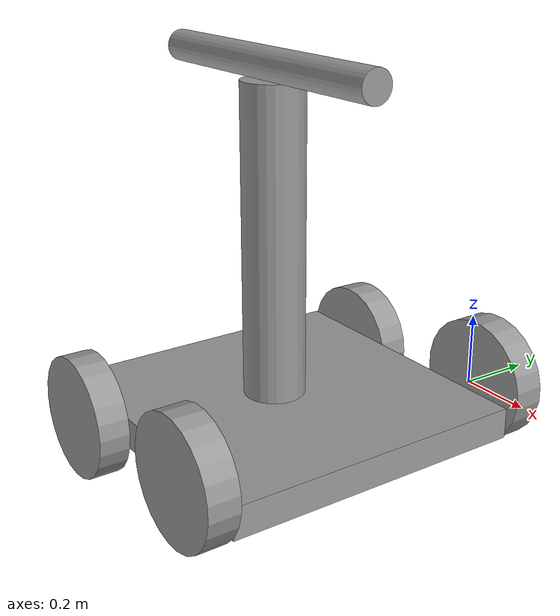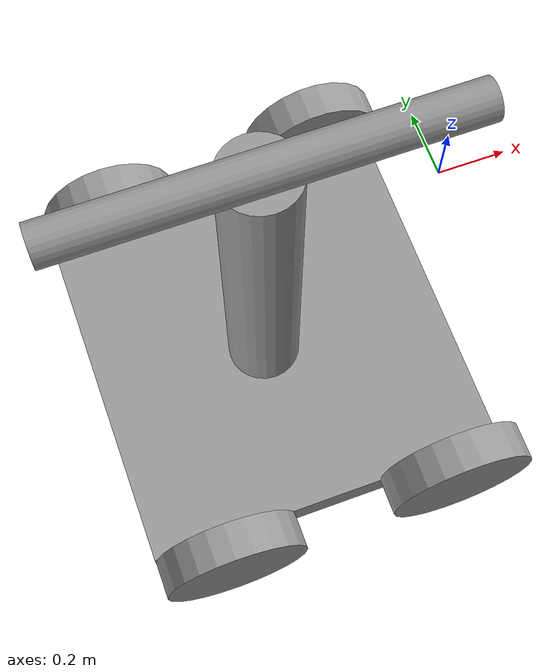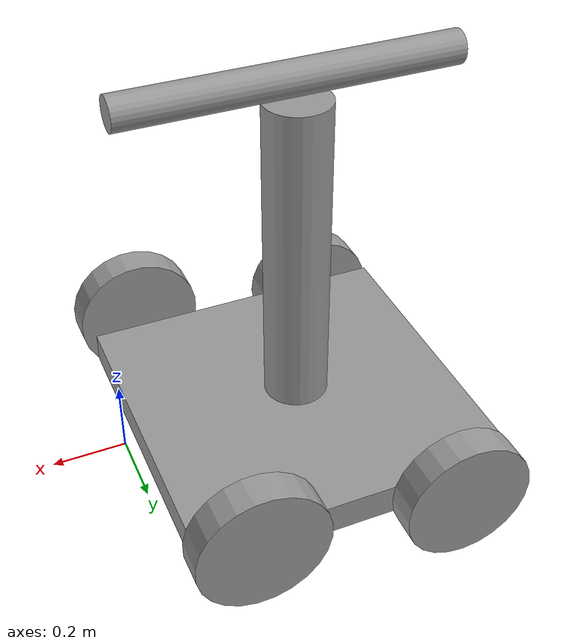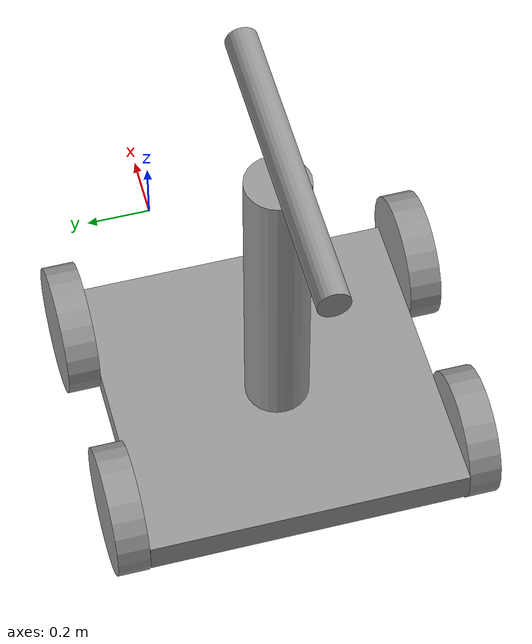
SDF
<?xml version='1.0'?>
<sdf version='1.6'>
  <model name='model_bot_2'>
    <link name='link_0_clone'>
      <pose frame=''>-0.897584 0.319677 -0.255 1.5707 -0 0</pose>
      <inertial>
        <mass>1</mass>
        <inertia>
          <ixx>0.145833</ixx>
          <ixy>0</ixy>
          <ixz>0</ixz>
          <iyy>0.145833</iyy>
          <iyz>0</iyz>
          <izz>0.125</izz>
        </inertia>
        <pose frame=''>0 0 0 0 -0 0</pose>
      </inertial>
      <self_collide>0</self_collide>
      <kinematic>0</kinematic>
      <visual name='visual'>
        <pose frame=''>0 0 0 0 -0 0</pose>
        <geometry>
          <cylinder>
            <radius>0.2</radius>
            <length>0.1</length>
          </cylinder>
        </geometry>
        <material>
          <lighting>1</lighting>
          <script>
            <uri>file://media/materials/scripts/gazebo.material</uri>
            <name>Gazebo/Grey</name>
          </script>
          <shader type='pixel'>
            <normal_map>__default__</normal_map>
          </shader>
          <ambient>0.3 0.3 0.3 1</ambient>
          <diffuse>0.7 0.7 0.7 1</diffuse>
          <specular>0.01 0.01 0.01 1</specular>
          <emissive>0 0 0 1</emissive>
        </material>
        <transparency>0</transparency>
        <cast_shadows>1</cast_shadows>
      </visual>
      <collision name='collision'>
        <laser_retro>0</laser_retro>
        <max_contacts>10</max_contacts>
        <pose frame=''>0 0 0 0 -0 0</pose>
        <geometry>
          <cylinder>
            <radius>0.2</radius>
            <length>0.1</length>
          </cylinder>
        </geometry>
        <surface>
          <friction>
            <ode>
              <mu>1</mu>
              <mu2>1</mu2>
              <fdir1>0 0 0</fdir1>
              <slip1>0</slip1>
              <slip2>0</slip2>
            </ode>
            <torsional>
              <coefficient>1</coefficient>
              <patch_radius>0</patch_radius>
              <surface_radius>0</surface_radius>
              <use_patch_radius>1</use_patch_radius>
              <ode>
                <slip>0</slip>
              </ode>
            </torsional>
          </friction>
          <bounce>
            <restitution_coefficient>0</restitution_coefficient>
            <threshold>1e+06</threshold>
          </bounce>
          <contact>
            <collide_without_contact>0</collide_without_contact>
            <collide_without_contact_bitmask>1</collide_without_contact_bitmask>
            <collide_bitmask>1</collide_bitmask>
            <ode>
              <soft_cfm>0</soft_cfm>
              <soft_erp>0.2</soft_erp>
              <kp>1e+13</kp>
              <kd>1</kd>
              <max_vel>0.01</max_vel>
              <min_depth>0</min_depth>
            </ode>
            <bullet>
              <split_impulse>1</split_impulse>
              <split_impulse_penetration_threshold>-0.01</split_impulse_penetration_threshold>
              <soft_cfm>0</soft_cfm>
              <soft_erp>0.2</soft_erp>
              <kp>1e+13</kp>
              <kd>1</kd>
            </bullet>
          </contact>
        </surface>
      </collision>
    </link>
    <link name='link_0_clone_0'>
      <pose frame=''>-0.897584 -0.780362 -0.255 1.5707 -0 0</pose>
      <inertial>
        <mass>1</mass>
        <inertia>
          <ixx>0.145833</ixx>
          <ixy>0</ixy>
          <ixz>0</ixz>
          <iyy>0.145833</iyy>
          <iyz>0</iyz>
          <izz>0.125</izz>
        </inertia>
        <pose frame=''>0 0 0 0 -0 0</pose>
      </inertial>
      <self_collide>0</self_collide>
      <kinematic>0</kinematic>
      <visual name='visual'>
        <pose frame=''>0 0 0 0 -0 0</pose>
        <geometry>
          <cylinder>
            <radius>0.2</radius>
            <length>0.1</length>
          </cylinder>
        </geometry>
        <material>
          <lighting>1</lighting>
          <script>
            <uri>file://media/materials/scripts/gazebo.material</uri>
            <name>Gazebo/Grey</name>
          </script>
          <shader type='pixel'>
            <normal_map>__default__</normal_map>
          </shader>
          <ambient>0.3 0.3 0.3 1</ambient>
          <diffuse>0.7 0.7 0.7 1</diffuse>
          <specular>0.01 0.01 0.01 1</specular>
          <emissive>0 0 0 1</emissive>
        </material>
        <transparency>0</transparency>
        <cast_shadows>1</cast_shadows>
      </visual>
      <collision name='collision'>
        <laser_retro>0</laser_retro>
        <max_contacts>10</max_contacts>
        <pose frame=''>0 0 0 0 -0 0</pose>
        <geometry>
          <cylinder>
            <radius>0.2</radius>
            <length>0.1</length>
          </cylinder>
        </geometry>
        <surface>
          <friction>
            <ode>
              <mu>1</mu>
              <mu2>1</mu2>
              <fdir1>0 0 0</fdir1>
              <slip1>0</slip1>
              <slip2>0</slip2>
            </ode>
            <torsional>
              <coefficient>1</coefficient>
              <patch_radius>0</patch_radius>
              <surface_radius>0</surface_radius>
              <use_patch_radius>1</use_patch_radius>
              <ode>
                <slip>0</slip>
              </ode>
            </torsional>
          </friction>
          <bounce>
            <restitution_coefficient>0</restitution_coefficient>
            <threshold>1e+06</threshold>
          </bounce>
          <contact>
            <collide_without_contact>0</collide_without_contact>
            <collide_without_contact_bitmask>1</collide_without_contact_bitmask>
            <collide_bitmask>1</collide_bitmask>
            <ode>
              <soft_cfm>0</soft_cfm>
              <soft_erp>0.2</soft_erp>
              <kp>1e+13</kp>
              <kd>1</kd>
              <max_vel>0.01</max_vel>
              <min_depth>0</min_depth>
            </ode>
            <bullet>
              <split_impulse>1</split_impulse>
              <split_impulse_penetration_threshold>-0.01</split_impulse_penetration_threshold>
              <soft_cfm>0</soft_cfm>
              <soft_erp>0.2</soft_erp>
              <kp>1e+13</kp>
              <kd>1</kd>
            </bullet>
          </contact>
        </surface>
      </collision>
    </link>
    <link name='link_0_clone_clone'>
      <pose frame=''>-0.258296 0.323495 -0.169372 1.57268 0.390812 0.005184</pose>
      <inertial>
        <mass>1</mass>
        <inertia>
          <ixx>0.145833</ixx>
          <ixy>0</ixy>
          <ixz>0</ixz>
          <iyy>0.145833</iyy>
          <iyz>0</iyz>
          <izz>0.125</izz>
        </inertia>
        <pose frame=''>0 0 0 0 -0 0</pose>
      </inertial>
      <self_collide>0</self_collide>
      <kinematic>0</kinematic>
      <visual name='visual'>
        <pose frame=''>0 0 0 0 -0 0</pose>
        <geometry>
          <cylinder>
            <radius>0.2</radius>
            <length>0.1</length>
          </cylinder>
        </geometry>
        <material>
          <lighting>1</lighting>
          <script>
            <uri>file://media/materials/scripts/gazebo.material</uri>
            <name>Gazebo/Grey</name>
          </script>
          <shader type='pixel'>
            <normal_map>__default__</normal_map>
          </shader>
          <ambient>0.3 0.3 0.3 1</ambient>
          <diffuse>0.7 0.7 0.7 1</diffuse>
          <specular>0.01 0.01 0.01 1</specular>
          <emissive>0 0 0 1</emissive>
        </material>
        <transparency>0</transparency>
        <cast_shadows>1</cast_shadows>
      </visual>
      <collision name='collision'>
        <laser_retro>0</laser_retro>
        <max_contacts>10</max_contacts>
        <pose frame=''>0 0 0 0 -0 0</pose>
        <geometry>
          <cylinder>
            <radius>0.2</radius>
            <length>0.1</length>
          </cylinder>
        </geometry>
        <surface>
          <friction>
            <ode>
              <mu>1</mu>
              <mu2>1</mu2>
              <fdir1>0 0 0</fdir1>
              <slip1>0</slip1>
              <slip2>0</slip2>
            </ode>
            <torsional>
              <coefficient>1</coefficient>
              <patch_radius>0</patch_radius>
              <surface_radius>0</surface_radius>
              <use_patch_radius>1</use_patch_radius>
              <ode>
                <slip>0</slip>
              </ode>
            </torsional>
          </friction>
          <bounce>
            <restitution_coefficient>0</restitution_coefficient>
            <threshold>1e+06</threshold>
          </bounce>
          <contact>
            <collide_without_contact>0</collide_without_contact>
            <collide_without_contact_bitmask>1</collide_without_contact_bitmask>
            <collide_bitmask>1</collide_bitmask>
            <ode>
              <soft_cfm>0</soft_cfm>
              <soft_erp>0.2</soft_erp>
              <kp>1e+13</kp>
              <kd>1</kd>
              <max_vel>0.01</max_vel>
              <min_depth>0</min_depth>
            </ode>
            <bullet>
              <split_impulse>1</split_impulse>
              <split_impulse_penetration_threshold>-0.01</split_impulse_penetration_threshold>
              <soft_cfm>0</soft_cfm>
              <soft_erp>0.2</soft_erp>
              <kp>1e+13</kp>
              <kd>1</kd>
            </bullet>
          </contact>
        </surface>
      </collision>
    </link>
    <link name='link_0_clone_clone_0'>
      <pose frame=''>-0.253401 -0.781298 -0.171394 1.57268 0.390812 0.005184</pose>
      <inertial>
        <mass>1</mass>
        <inertia>
          <ixx>0.145833</ixx>
          <ixy>0</ixy>
          <ixz>0</ixz>
          <iyy>0.145833</iyy>
          <iyz>0</iyz>
          <izz>0.125</izz>
        </inertia>
        <pose frame=''>0 0 0 0 -0 0</pose>
      </inertial>
      <self_collide>0</self_collide>
      <kinematic>0</kinematic>
      <visual name='visual'>
        <pose frame=''>0 0 0 0 -0 0</pose>
        <geometry>
          <cylinder>
            <radius>0.2</radius>
            <length>0.1</length>
          </cylinder>
        </geometry>
        <material>
          <lighting>1</lighting>
          <script>
            <uri>file://media/materials/scripts/gazebo.material</uri>
            <name>Gazebo/Grey</name>
          </script>
          <shader type='pixel'>
            <normal_map>__default__</normal_map>
          </shader>
          <ambient>0.3 0.3 0.3 1</ambient>
          <diffuse>0.7 0.7 0.7 1</diffuse>
          <specular>0.01 0.01 0.01 1</specular>
          <emissive>0 0 0 1</emissive>
        </material>
        <transparency>0</transparency>
        <cast_shadows>1</cast_shadows>
      </visual>
      <collision name='collision'>
        <laser_retro>0</laser_retro>
        <max_contacts>10</max_contacts>
        <pose frame=''>0 0 0 0 -0 0</pose>
        <geometry>
          <cylinder>
            <radius>0.2</radius>
            <length>0.1</length>
          </cylinder>
        </geometry>
        <surface>
          <friction>
            <ode>
              <mu>1</mu>
              <mu2>1</mu2>
              <fdir1>0 0 0</fdir1>
              <slip1>0</slip1>
              <slip2>0</slip2>
            </ode>
            <torsional>
              <coefficient>1</coefficient>
              <patch_radius>0</patch_radius>
              <surface_radius>0</surface_radius>
              <use_patch_radius>1</use_patch_radius>
              <ode>
                <slip>0</slip>
              </ode>
            </torsional>
          </friction>
          <bounce>
            <restitution_coefficient>0</restitution_coefficient>
            <threshold>1e+06</threshold>
          </bounce>
          <contact>
            <collide_without_contact>0</collide_without_contact>
            <collide_without_contact_bitmask>1</collide_without_contact_bitmask>
            <collide_bitmask>1</collide_bitmask>
            <ode>
              <soft_cfm>0</soft_cfm>
              <soft_erp>0.2</soft_erp>
              <kp>1e+13</kp>
              <kd>1</kd>
              <max_vel>0.01</max_vel>
              <min_depth>0</min_depth>
            </ode>
            <bullet>
              <split_impulse>1</split_impulse>
              <split_impulse_penetration_threshold>-0.01</split_impulse_penetration_threshold>
              <soft_cfm>0</soft_cfm>
              <soft_erp>0.2</soft_erp>
              <kp>1e+13</kp>
              <kd>1</kd>
            </bullet>
          </contact>
        </surface>
      </collision>
    </link>
    <link name='link_1'>
      <pose frame=''>-0.597584 -0.230343 -0.255 0 -0 0</pose>
      <inertial>
        <mass>1</mass>
        <inertia>
          <ixx>0.166667</ixx>
          <ixy>0</ixy>
          <ixz>0</ixz>
          <iyy>0.166667</iyy>
          <iyz>0</iyz>
          <izz>0.166667</izz>
        </inertia>
        <pose frame=''>0 0 0 0 -0 0</pose>
      </inertial>
      <self_collide>0</self_collide>
      <kinematic>0</kinematic>
      <gravity>1</gravity>
      <visual name='visual'>
        <pose frame=''>0 0 0 0 -0 0</pose>
        <geometry>
          <box>
            <size>1 1 0.1</size>
          </box>
        </geometry>
        <material>
          <lighting>1</lighting>
          <script>
            <uri>file://media/materials/scripts/gazebo.material</uri>
            <name>Gazebo/Grey</name>
          </script>
          <shader type='pixel'>
            <normal_map>__default__</normal_map>
          </shader>
          <ambient>0.3 0.3 0.3 1</ambient>
          <diffuse>0.7 0.7 0.7 1</diffuse>
          <specular>0.01 0.01 0.01 1</specular>
          <emissive>0 0 0 1</emissive>
        </material>
        <transparency>0</transparency>
        <cast_shadows>1</cast_shadows>
      </visual>
      <collision name='collision'>
        <laser_retro>0</laser_retro>
        <max_contacts>10</max_contacts>
        <pose frame=''>0 0 0 0 -0 0</pose>
        <geometry>
          <box>
            <size>1 1 0.1</size>
          </box>
        </geometry>
        <surface>
          <friction>
            <ode>
              <mu>1</mu>
              <mu2>1</mu2>
              <fdir1>0 0 0</fdir1>
              <slip1>0</slip1>
              <slip2>0</slip2>
            </ode>
            <torsional>
              <coefficient>1</coefficient>
              <patch_radius>0</patch_radius>
              <surface_radius>0</surface_radius>
              <use_patch_radius>1</use_patch_radius>
              <ode>
                <slip>0</slip>
              </ode>
            </torsional>
          </friction>
          <bounce>
            <restitution_coefficient>0</restitution_coefficient>
            <threshold>1e+06</threshold>
          </bounce>
          <contact>
            <collide_without_contact>0</collide_without_contact>
            <collide_without_contact_bitmask>1</collide_without_contact_bitmask>
            <collide_bitmask>1</collide_bitmask>
            <ode>
              <soft_cfm>0</soft_cfm>
              <soft_erp>0.2</soft_erp>
              <kp>1e+13</kp>
              <kd>1</kd>
              <max_vel>0.01</max_vel>
              <min_depth>0</min_depth>
            </ode>
            <bullet>
              <split_impulse>1</split_impulse>
              <split_impulse_penetration_threshold>-0.01</split_impulse_penetration_threshold>
              <soft_cfm>0</soft_cfm>
              <soft_erp>0.2</soft_erp>
              <kp>1e+13</kp>
              <kd>1</kd>
            </bullet>
          </contact>
        </surface>
      </collision>
    </link>
    <link name='link_2'>
      <pose frame=''>-0.617584 -0.250343 0.295 0 -0 0</pose>
      <inertial>
        <mass>1</mass>
        <inertia>
          <ixx>0.145833</ixx>
          <ixy>0</ixy>
          <ixz>0</ixz>
          <iyy>0.145833</iyy>
          <iyz>0</iyz>
          <izz>0.125</izz>
        </inertia>
        <pose frame=''>0 0 0 0 -0 0</pose>
      </inertial>
      <self_collide>0</self_collide>
      <kinematic>0</kinematic>
      <visual name='visual'>
        <pose frame=''>0 0 0 0 -0 0</pose>
        <geometry>
          <cylinder>
            <radius>0.1</radius>
            <length>1</length>
          </cylinder>
        </geometry>
        <material>
          <lighting>1</lighting>
          <script>
            <uri>file://media/materials/scripts/gazebo.material</uri>
            <name>Gazebo/Grey</name>
          </script>
          <shader type='pixel'>
            <normal_map>__default__</normal_map>
          </shader>
          <ambient>0.3 0.3 0.3 1</ambient>
          <diffuse>0.7 0.7 0.7 1</diffuse>
          <specular>0.01 0.01 0.01 1</specular>
          <emissive>0 0 0 1</emissive>
        </material>
        <transparency>0</transparency>
        <cast_shadows>1</cast_shadows>
      </visual>
      <collision name='collision'>
        <laser_retro>0</laser_retro>
        <max_contacts>10</max_contacts>
        <pose frame=''>0 0 0 0 -0 0</pose>
        <geometry>
          <cylinder>
            <radius>0.1</radius>
            <length>1</length>
          </cylinder>
        </geometry>
        <surface>
          <friction>
            <ode>
              <mu>1</mu>
              <mu2>1</mu2>
              <fdir1>0 0 0</fdir1>
              <slip1>0</slip1>
              <slip2>0</slip2>
            </ode>
            <torsional>
              <coefficient>1</coefficient>
              <patch_radius>0</patch_radius>
              <surface_radius>0</surface_radius>
              <use_patch_radius>1</use_patch_radius>
              <ode>
                <slip>0</slip>
              </ode>
            </torsional>
          </friction>
          <bounce>
            <restitution_coefficient>0</restitution_coefficient>
            <threshold>1e+06</threshold>
          </bounce>
          <contact>
            <collide_without_contact>0</collide_without_contact>
            <collide_without_contact_bitmask>1</collide_without_contact_bitmask>
            <collide_bitmask>1</collide_bitmask>
            <ode>
              <soft_cfm>0</soft_cfm>
              <soft_erp>0.2</soft_erp>
              <kp>1e+13</kp>
              <kd>1</kd>
              <max_vel>0.01</max_vel>
              <min_depth>0</min_depth>
            </ode>
            <bullet>
              <split_impulse>1</split_impulse>
              <split_impulse_penetration_threshold>-0.01</split_impulse_penetration_threshold>
              <soft_cfm>0</soft_cfm>
              <soft_erp>0.2</soft_erp>
              <kp>1e+13</kp>
              <kd>1</kd>
            </bullet>
          </contact>
        </surface>
      </collision>
    </link>
    <link name='link_3'>
      <pose frame=''>-0.610414 -0.276048 0.845 5e-06 1.5707 5e-06</pose>
      <inertial>
        <mass>1</mass>
        <inertia>
          <ixx>0.145833</ixx>
          <ixy>0</ixy>
          <ixz>0</ixz>
          <iyy>0.145833</iyy>
          <iyz>0</iyz>
          <izz>0.125</izz>
        </inertia>
        <pose frame=''>0 0 0 0 -0 0</pose>
      </inertial>
      <self_collide>0</self_collide>
      <kinematic>0</kinematic>
      <visual name='visual'>
        <pose frame=''>0 0 0 0 -0 0</pose>
        <geometry>
          <cylinder>
            <radius>0.05</radius>
            <length>1</length>
          </cylinder>
        </geometry>
        <material>
          <lighting>1</lighting>
          <script>
            <uri>file://media/materials/scripts/gazebo.material</uri>
            <name>Gazebo/Grey</name>
          </script>
          <shader type='pixel'>
            <normal_map>__default__</normal_map>
          </shader>
          <ambient>0.3 0.3 0.3 1</ambient>
          <diffuse>0.7 0.7 0.7 1</diffuse>
          <specular>0.01 0.01 0.01 1</specular>
          <emissive>0 0 0 1</emissive>
        </material>
        <transparency>0</transparency>
        <cast_shadows>1</cast_shadows>
      </visual>
      <collision name='collision'>
        <laser_retro>0</laser_retro>
        <max_contacts>10</max_contacts>
        <pose frame=''>0 0 0 0 -0 0</pose>
        <geometry>
          <cylinder>
            <radius>0.05</radius>
            <length>1</length>
          </cylinder>
        </geometry>
        <surface>
          <friction>
            <ode>
              <mu>1</mu>
              <mu2>1</mu2>
              <fdir1>0 0 0</fdir1>
              <slip1>0</slip1>
              <slip2>0</slip2>
            </ode>
            <torsional>
              <coefficient>1</coefficient>
              <patch_radius>0</patch_radius>
              <surface_radius>0</surface_radius>
              <use_patch_radius>1</use_patch_radius>
              <ode>
                <slip>0</slip>
              </ode>
            </torsional>
          </friction>
          <bounce>
            <restitution_coefficient>0</restitution_coefficient>
            <threshold>1e+06</threshold>
          </bounce>
          <contact>
            <collide_without_contact>0</collide_without_contact>
            <collide_without_contact_bitmask>1</collide_without_contact_bitmask>
            <collide_bitmask>1</collide_bitmask>
            <ode>
              <soft_cfm>0</soft_cfm>
              <soft_erp>0.2</soft_erp>
              <kp>1e+13</kp>
              <kd>1</kd>
              <max_vel>0.01</max_vel>
              <min_depth>0</min_depth>
            </ode>
            <bullet>
              <split_impulse>1</split_impulse>
              <split_impulse_penetration_threshold>-0.01</split_impulse_penetration_threshold>
              <soft_cfm>0</soft_cfm>
              <soft_erp>0.2</soft_erp>
              <kp>1e+13</kp>
              <kd>1</kd>
            </bullet>
          </contact>
        </surface>
      </collision>
    </link>
    <joint name='link_1_JOINT_1' type='revolute'>
      <parent>link_1</parent>
      <child>link_0_clone</child>
      <pose frame=''>0 0 0 0 -0 0</pose>
      <axis>
        <xyz>0 0 1</xyz>
        <use_parent_model_frame>0</use_parent_model_frame>
        <limit>
          <lower>-1.79769e+308</lower>
          <upper>1.79769e+308</upper>
          <effort>-1</effort>
          <velocity>-1</velocity>
        </limit>
        <dynamics>
          <spring_reference>0</spring_reference>
          <spring_stiffness>0</spring_stiffness>
          <damping>0</damping>
          <friction>0</friction>
        </dynamics>
      </axis>
      <physics>
        <ode>
          <limit>
            <cfm>0</cfm>
            <erp>0.2</erp>
          </limit>
          <suspension>
            <cfm>0</cfm>
            <erp>0.2</erp>
          </suspension>
        </ode>
      </physics>
    </joint>
    <joint name='link_1_JOINT_2' type='revolute'>
      <parent>link_1</parent>
      <child>link_0_clone_0</child>
      <pose frame=''>0 0 0 0 -0 0</pose>
      <axis>
        <xyz>0 0 1</xyz>
        <use_parent_model_frame>0</use_parent_model_frame>
        <limit>
          <lower>-1.79769e+308</lower>
          <upper>1.79769e+308</upper>
          <effort>-1</effort>
          <velocity>-1</velocity>
        </limit>
        <dynamics>
          <spring_reference>0</spring_reference>
          <spring_stiffness>0</spring_stiffness>
          <damping>0</damping>
          <friction>0</friction>
        </dynamics>
      </axis>
      <physics>
        <ode>
          <limit>
            <cfm>0</cfm>
            <erp>0.2</erp>
          </limit>
          <suspension>
            <cfm>0</cfm>
            <erp>0.2</erp>
          </suspension>
        </ode>
      </physics>
    </joint>
    <joint name='link_1_JOINT_3' type='revolute'>
      <parent>link_1</parent>
      <child>link_2</child>
      <pose frame=''>0 0 0 0 -0 0</pose>
      <axis>
        <xyz>0 0 1</xyz>
        <use_parent_model_frame>0</use_parent_model_frame>
        <limit>
          <lower>-1.79769e+308</lower>
          <upper>1.79769e+308</upper>
          <effort>-1</effort>
          <velocity>-1</velocity>
        </limit>
        <dynamics>
          <spring_reference>0</spring_reference>
          <spring_stiffness>0</spring_stiffness>
          <damping>0</damping>
          <friction>0</friction>
        </dynamics>
      </axis>
      <physics>
        <ode>
          <limit>
            <cfm>0</cfm>
            <erp>0.2</erp>
          </limit>
          <suspension>
            <cfm>0</cfm>
            <erp>0.2</erp>
          </suspension>
        </ode>
      </physics>
    </joint>
    <joint name='link_1_JOINT_6' type='revolute'>
      <parent>link_1</parent>
      <child>link_0_clone_clone_0</child>
      <pose frame=''>0 0 0 0 -0.03 0</pose>
      <axis>
        <xyz>0 0 1</xyz>
        <use_parent_model_frame>0</use_parent_model_frame>
        <limit>
          <lower>-1.79769e+308</lower>
          <upper>1.79769e+308</upper>
          <effort>-1</effort>
          <velocity>-1</velocity>
        </limit>
        <dynamics>
          <spring_reference>0</spring_reference>
          <spring_stiffness>0</spring_stiffness>
          <damping>0</damping>
        </dynamics>
      </axis>
      <physics>
        <ode>
          <limit>
            <cfm>0</cfm>
            <erp>0.2</erp>
          </limit>
          <suspension>
            <cfm>0</cfm>
            <erp>0.2</erp>
          </suspension>
        </ode>
      </physics>
    </joint>
    <joint name='link_1_JOINT_7' type='revolute'>
      <parent>link_1</parent>
      <child>link_0_clone_clone</child>
      <pose frame=''>0 0 0 0 -0 0</pose>
      <axis>
        <xyz>0 0 1</xyz>
        <use_parent_model_frame>0</use_parent_model_frame>
        <limit>
          <lower>-1.79769e+308</lower>
          <upper>1.79769e+308</upper>
          <effort>-1</effort>
          <velocity>-1</velocity>
        </limit>
        <dynamics>
          <spring_reference>0</spring_reference>
          <spring_stiffness>0</spring_stiffness>
          <damping>0</damping>
        </dynamics>
      </axis>
      <physics>
        <ode>
          <limit>
            <cfm>0</cfm>
            <erp>0.2</erp>
          </limit>
          <suspension>
            <cfm>0</cfm>
            <erp>0.2</erp>
          </suspension>
        </ode>
      </physics>
    </joint>
    <joint name='link_2_JOINT_8' type='revolute'>
      <parent>link_2</parent>
      <child>link_3</child>
      <pose frame=''>0 0 0 0 -0 0</pose>
      <axis>
        <xyz>1 0 0</xyz>
        <use_parent_model_frame>0</use_parent_model_frame>
        <limit>
          <lower>-1.79769e+308</lower>
          <upper>1.79769e+308</upper>
          <effort>-1</effort>
          <velocity>-1</velocity>
        </limit>
        <dynamics>
          <spring_reference>0</spring_reference>
          <spring_stiffness>0</spring_stiffness>
          <damping>0</damping>
        </dynamics>
      </axis>
      <physics>
        <ode>
          <limit>
            <cfm>0</cfm>
            <erp>0.2</erp>
          </limit>
          <suspension>
            <cfm>0</cfm>
            <erp>0.2</erp>
          </suspension>
        </ode>
      </physics>
    </joint>
    <static>0</static>
    <allow_auto_disable>1</allow_auto_disable>
  </model>
</sdf>
